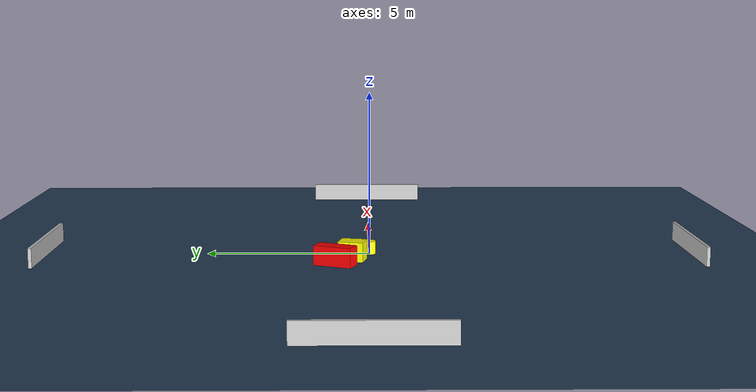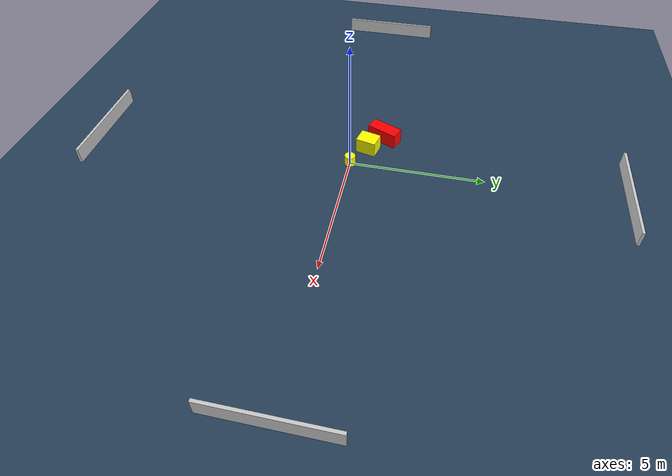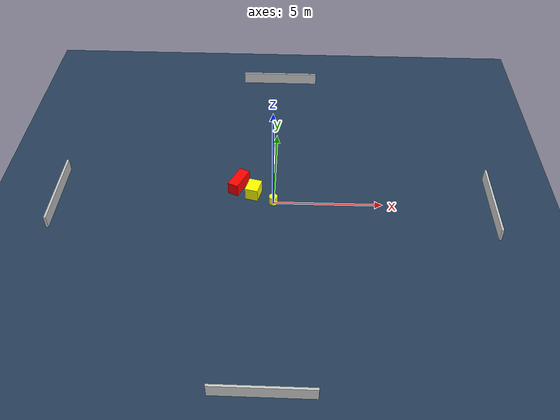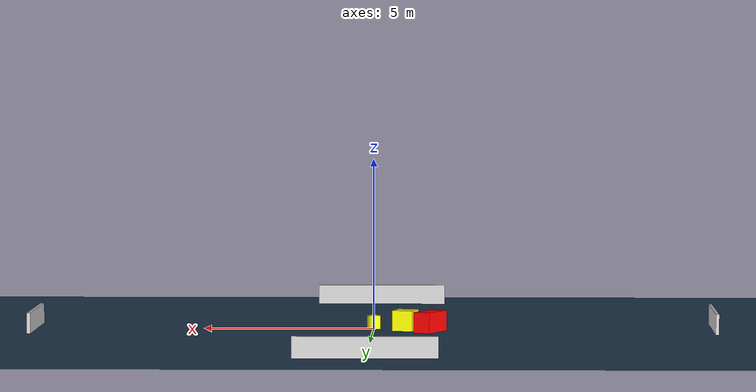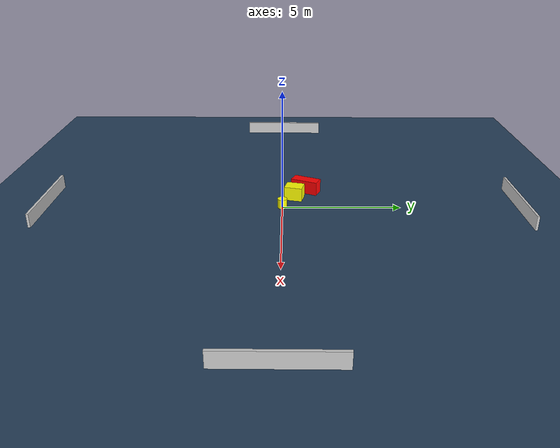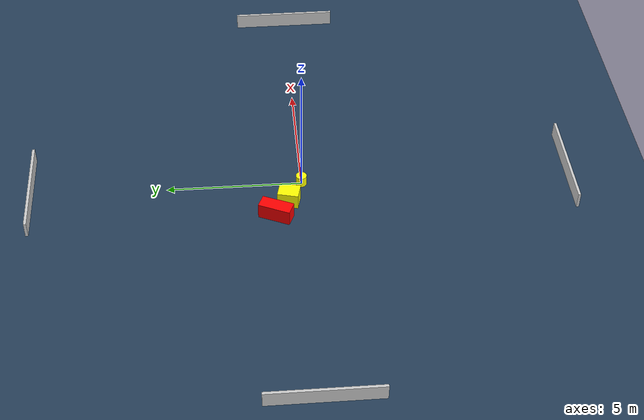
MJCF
<?xml version="1.0" ?>
<mujoco model="generated_environment">
  <option timestep="0.01" integrator="RK4" cone="elliptic"/>
  <default>
    <geom density="1"/>
  </default>
  <asset>
    <texture builtin="gradient" height="3072" name="skybox" rgb1="0.3 0.5 0.7" rgb2="0 0 0" type="skybox" width="512"/>
    <texture builtin="checker" height="300" name="groundplane" rgb1="0.2 0.3 0.4" rgb2="0.1 0.2 0.3" type="2d" width="300"/>
    <material name="groundplane" reflectance="0.2" texrepeat="5 5" texture="groundplane"/>
  </asset>
  <worldbody>
    <light dir="0 0 -1" directional="true" pos="0 0 1.5"/>
    <geom condim="3" friction="0.5 0.005 0.001" material="groundplane" name="floor" pos="0 0 0" size="0 0 0.05" type="plane"/>
    <body name="walls">
      <geom name="wall_1" condim="4" pos="-10.0 0.0 0.3" rgba="0.800000011920929 0.800000011920929 0.800000011920929 1.0" size="0.05 2.0 0.3" type="box"/>
      <geom name="wall_2" condim="4" pos="10.0 0.0 0.3" rgba="0.800000011920929 0.800000011920929 0.800000011920929 1.0" size="0.05 2.0 0.3" type="box"/>
      <geom name="wall_3" condim="4" pos="0.0 -10.0 0.3" rgba="0.800000011920929 0.800000011920929 0.800000011920929 1.0" size="2.0 0.05 0.3" type="box"/>
      <geom name="wall_4" condim="4" pos="0.0 10.0 0.3" rgba="0.800000011920929 0.800000011920929 0.800000011920929 1.0" size="2.0 0.05 0.3" type="box"/>
    </body>
    <body name="robot">
      <joint name="joint_x" type="slide" pos="0 0 0" axis="1 0 0"/>
      <joint name="joint_y" type="slide" pos="0 0 0" axis="0 1 0"/>
      <geom name="robot" type="cylinder" pos="0.0 0.0 0.2" size="0.2 0.2 0.0" mass="5.0" friction="1.0 0.005 0.0001" condim="4" rgba="1.0 1.0 0.0 1.0"/>
    </body>
    <body name="obstacle_1_movable">
      <geom name="obstacle_1_movable" condim="4" pos="-0.9388921416660648 0.5220570680773883 0.3" euler="0 0 346.35641209814145" friction="0.0 0.005 0.001" rgba="1.0 1.0 0.0 1.0" size="0.3020863559625501 0.3846487484185782 0.3" type="box" mass="0.1"/>
      <joint type="free"/>
    </body>
    <body name="obstacle_2_static">
      <geom name="obstacle_2_static" condim="4" pos="-1.6625889811636752 1.0370773456523907 0.3" euler="0 0 66.06024934596768" friction="0.0 0.005 0.001" rgba="1.0 0.0 0.0 1.0" size="0.6013582498492536 0.2533696165620879 0.3" type="box"/>
    </body>
  </worldbody>
  <actuator>
    <motor name="actuator_x" joint="joint_x" gear="1" ctrlrange="-1 1"/>
    <motor name="actuator_y" joint="joint_y" gear="1" ctrlrange="-1 1"/>
  </actuator>
</mujoco>
